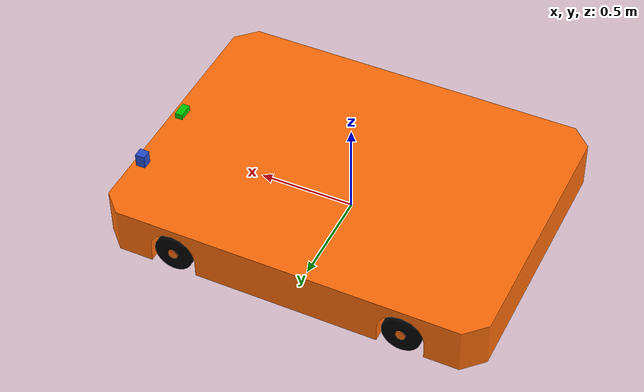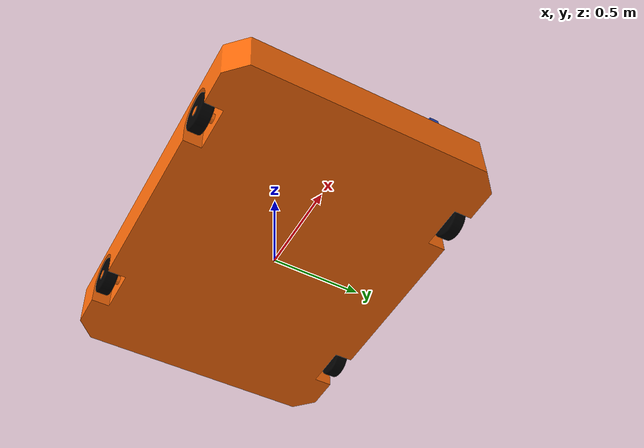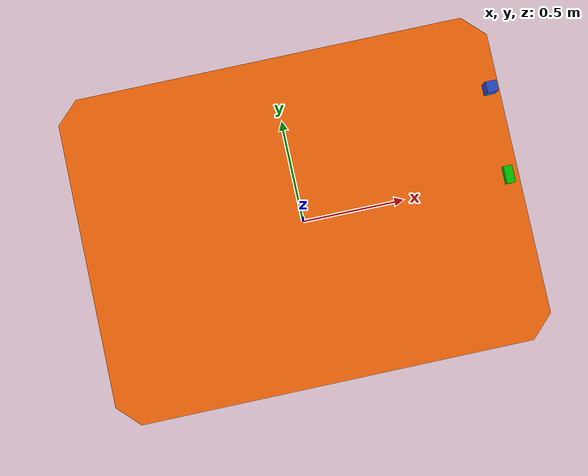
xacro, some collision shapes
<?xml version="1.0"?>
<robot name= "agv"  xmlns:xacro="http://www.ros.org/wiki/xacro">

	<!-- Robot constants and properties -->
	<xacro:include filename="$(find agv_description)/urdf/agv_properties.xacro" />
	<!-- Gazebo aspects of the robot -->
	<xacro:include filename="$(find agv_description)/urdf/agv.gazebo" />
	<!-- Inertia matrices -->
	<xacro:include filename="$(find agv_description)/urdf/macros.xacro" />
        <!-- import Rviz color-->
        <xacro:include filename="$(find agv_description)/urdf/materials.xacro" />

  <link
    name="base_footprint">
    <inertial>
      <origin
        xyz="0 0 0"
        rpy="0 0 0" />
      <mass
        value="2.01061929829948E-06" />
      <inertia
        ixx="8.04274527577102E-12"
        ixy="0"
        ixz="0"
        iyy="8.04274527577102E-12"
        iyz="0"
        izz="1.60849543863958E-11" />
    </inertial>
    <visual>
      <origin
        xyz="0 0 0"
        rpy="0 0 0" />
      <geometry>
        <mesh
          filename="package://agv_description/meshes/base_footprint.STL" />
      </geometry>
      <material name="grey" />
    </visual>
    <collision>
      <origin
        xyz="0 0 0"
        rpy="0 0 0" />
      <geometry>
        <mesh
          filename="package://agv_description/meshes/base_footprint.STL" />
      </geometry>
    </collision>
  </link>

  <!-- base link-->
  <link
    name="base_Link">
    <inertial>
      <!--origin
        xyz="0 0 0.125713618058247"
        rpy="0 0 0" /-->
      <origin
        xyz="0 0 0"
        rpy="0 0 0"/>
      <mass
        value="1000" />
      <box_inertia
        m="1000"
        x="2"
        y="1.5"
        z="0.23" />
    </inertial>
    <visual>
      <origin
        xyz="0 0 0"
        rpy="0 0 0" />
      <geometry>
        <mesh
          filename="package://agv_description/meshes/base_Link.STL" />
      </geometry>
      <material name="orange" />
    </visual>
    <collision>
      <origin
        xyz="0 0 0"
        rpy="0 0 0" />
      <geometry>
        <mesh
          filename="package://agv_description/meshes/base_Link.STL" />
      </geometry>
    </collision>
  </link>

  <joint
    name="base_footprint_joint"
    type="fixed">
    <origin
      xyz="0 0 4E-05"
      rpy="0 0 0" />
    <parent
      link="base_footprint" />
    <child
      link="base_Link" />
    <axis
      xyz="0 0 0" />
  </joint>

 <!-- front left link-->
  <link
    name="fl_Link">
    <inertial>
      <origin
        xyz="0 0 0.035"
        rpy="0 0 0" />
      <mass
        value="2.02796060125243" />
      <cylinder_inertia
        m="5"
        r="0.1"
        h="0.14" />
    </inertial>
    <visual>
      <origin
        xyz="0 0 0"
        rpy="0 0 0" />
      <geometry>
        <mesh
          filename="package://agv_description/meshes/fl_Link.STL" />
      </geometry>
      <material name="black" />
    </visual>
    <collision>
      <origin
        xyz="0 0 0"
        rpy="0 0 0" />
      <geometry>
        <mesh
          filename="package://agv_description/meshes/fl_Link.STL" />
      </geometry>
    </collision>
  </link>

  <joint
    name="fl_joint"
    type="continuous">
    <origin
      xyz="0.6 0.68 0.09"
      rpy="-1.5708 0 0" />
    <parent
      link="base_Link" />
    <child
      link="fl_Link" />
    <axis
      xyz="0 0 1" />
  </joint>

  <!-- back left link-->
  <link
    name="bl_Link">
    <inertial>
      <origin
        xyz="1.11022302462516E-16 0 0.0349886144674467"
        rpy="0 0 0" />
      <mass
        value="5" />
      <cylinder_inertia
        m="5"
        r="0.1"
        h="0.14" />
    </inertial>
    <visual>
      <origin
        xyz="0 0 0"
        rpy="0 0 0" />
      <geometry>
        <mesh
          filename="package://agv_description/meshes/bl_Link.STL" />
      </geometry>
      <material name="black" />

    </visual>
    <collision>
      <origin
        xyz="0 0 0"
        rpy="0 0 0" />
      <geometry>
        <mesh
          filename="package://agv_description/meshes/bl_Link.STL" />
      </geometry>
    </collision>
  </link>

  <joint
    name="bl_joint"
    type="continuous">
    <origin
      xyz="-0.6 0.68 0.0900000000000001"
      rpy="-1.5707963267949 0 0" />
    <parent
      link="base_Link" />
    <child
      link="bl_Link" />
    <axis
      xyz="0 0 1" />
  </joint>

<!-- front right link-->
  <link
    name="fr_Link">
    <inertial>
      <origin
        xyz="0 2.22044604925031E-16 0.0350501592853405"
        rpy="0 0 0" />
      <mass
        value="2.03116301113069" />
      <cylinder_inertia
        m="5"
        r="0.1"
        h="0.14" />
    </inertial>
    <visual>
      <origin
        xyz="0 0 0"
        rpy="0 0 0" />
      <geometry>
        <mesh
          filename="package://agv_description/meshes/fr_Link.STL" />
      </geometry>
      <material name="black" />
    </visual>
    <collision>
      <origin
        xyz="0 0 0"
        rpy="0 0 0" />
      <geometry>
        <mesh
          filename="package://agv_description/meshes/fr_Link.STL" />
      </geometry>
    </collision>
  </link>

  <joint
    name="fr_joint"
    type="continuous">
    <origin
      xyz="0.6 -0.68 0.0900000000000001"
      rpy="1.5707963267949 0 0" />
    <parent
      link="base_Link" />
    <child
      link="fr_Link" />
    <axis
      xyz="0 0 1" />
  </joint>

<!-- back right link-->
  <link
    name="br_Link">
    <inertial>
      <origin
        xyz="0 0 0.0349611985496496"
        rpy="0 0 0" />
      <mass
        value="2.03044090786952" />
      <cylinder_inertia
        m="5"
        r="0.1"
        h="0.14" />
    </inertial>
    <visual>
      <origin
        xyz="0 0 0"
        rpy="0 0 0" />
      <geometry>
        <mesh
          filename="package://agv_description/meshes/br_Link.STL" />
      </geometry>
      <material name="black" />
    </visual>
    <collision>
      <origin
        xyz="0 0 0"
        rpy="0 0 0" />
      <geometry>
        <mesh
          filename="package://agv_description/meshes/br_Link.STL" />
      </geometry>
    </collision>
  </link>

 <joint
    name="br_joint"
    type="continuous">
    <origin
      xyz="-0.6 -0.68 0.0899999999999994"
      rpy="1.5707963267949 0 0" />
    <parent
      link="base_Link" />
    <child
      link="br_Link" />
    <axis
      xyz="0 0 1" />
  </joint>

  <!-- sensors -->
  <xacro:include filename="$(find agv_description)/urdf/sensors.xacro" />
</robot>

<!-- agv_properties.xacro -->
<robot xmlns:xacro="http://www.ros.org/wiki/xacro">

	<!-- Constants -->
	<xacro:property name="PI" value="3.1415926535897931"/>

	<!-- Chassis properties -->
	<xacro:property name="chassisHeight" value="0.0623"/>
	<xacro:property name="chassisLength" value="0.198"/>
	<xacro:property name="chassisWidth" value="0.119"/>
	<xacro:property name="chassisMass" value="0.15"/>

	<!-- Caster wheel properties -->
	<xacro:property name="casterRadius" value="0.021"/>
	<xacro:property name="casterMass" value="0.09"/>
	<xacro:property name="casterOffsetX" value="0.091"/>

	<!-- Differential-drive wheels properties -->
	<xacro:property name="wheelWidth" value="0.026"/>
	<xacro:property name="wheelRadius" value="0.032"/>
	<xacro:property name="wheelMass" value="0.05"/>
	<xacro:property name="wheelOffsetY" value="0.037"/>

	<!-- Hokuyo laser properties -->
	<xacro:property name="hokuyoMass" value="0.01"/>
	<xacro:property name="hokuyoLength" value="0.05"/>
	<xacro:property name="hokuyoWidth" value="0.05"/>
	<xacro:property name="hokuyoHeight" value="0.07"/>
	<xacro:property name="hokuyoOffsetX" value="0.95"/>
	<xacro:property name="hokuyoOffsetY" value="0.4"/>
	<!--xacro:property name="hokuyoOffsetX" value="0.05"/-->
	<xacro:property name="hokuyoOffsetZ" value="0.285"/>
	<!--xacro:property name="hokuyoOffsetZ" value="0.1125"/-->

	<!-- Camera properties -->
	<xacro:property name="cameraLength" value="0.04"/>
	<xacro:property name="cameraWidth" value="0.08"/>
	<xacro:property name="cameraHeight" value="0.03"/>
	<xacro:property name="cameraMass" value="0.01"/>
	<xacro:property name="cameraOffsetX" value="0.95"/>
	<xacro:property name="cameraOffsetZ" value="0.265"/>

</robot>

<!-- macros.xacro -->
<!--
	definitions of some macros for easier description of the robot
-->

<robot xmlns:xacro="http://www.ros.org/wiki/xacro">

  <xacro:macro name="cylinder_inertia" params="m r h">

    <inertia
          ixx="${m*(3*r*r+h*h)/12}"
    			ixy = "0"
    			ixz = "0"
    			iyy="${m*(3*r*r+h*h)/12}"
    			iyz = "0"
    			izz="${m*r*r/2}"
    />
  </xacro:macro>

  <xacro:macro name="box_inertia" params="m x y z">

    <inertia
          ixx="${m*(y*y+z*z)/12}"
    			ixy = "0"
    			ixz = "0"
    			iyy="${m*(x*x+z*z)/12}"
    			iyz = "0"
    			izz="${m*(x*x+z*z)/12}"
    />
  </xacro:macro>

  <xacro:macro name="sphere_inertia" params="m r">

    <inertia
          ixx="${2*m*r*r/5}"
    			ixy = "0"
    			ixz = "0"
    			iyy="${2*m*r*r/5}"
    			iyz = "0"
    			izz="${2*m*r*r/5}"
    />
  </xacro:macro>

<!--
  http://gazebosim.org/tutorials/?tut=ros_control
-->
    <!-- Transmissions for ROS-Control -->
  <xacro:macro name="transmission_block" params="joint_name">

    <transmission name="${joint_name}_trans">
      <type>transmission_interface/SimpleTransmission</type>
      <joint name="${joint_name}">
        <hardwareInterface>hardware_interface/PositionJointInterface</hardwareInterface>
      </joint>
      <actuator name="${joint_name}_Motor">
        <hardwareInterface>hardware_interface/PositionJointInterface</hardwareInterface>
        <mechanicalReduction>1</mechanicalReduction>
      </actuator>
    </transmission>
  </xacro:macro>

  <!-- transmission-->
  <xacro:transmission_block joint_name="fl_joint" />
  <xacro:transmission_block joint_name="fr_joint" />
  <xacro:transmission_block joint_name="bl_joint" />
  <xacro:transmission_block joint_name="br_joint" />

</robot>

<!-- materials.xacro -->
<robot>
	<material name="black">
	  <color rgba="0.0 0.0 0.0 1.0"/>
	</material>

	<material name="blue">
	  <color rgba="0.0 0.0 0.8 1.0"/>
	</material>

	<material name="green">
	  <color rgba="0.0 0.8 0.0 1.0"/>
	</material>

	<material name="grey">
	  <color rgba="0.2 0.2 0.2 1.0"/>
	</material>

	<material name="light_grey">
          <color rgba="0.6 0.6 0.6 1"/>
        </material>

        <material name="dark_grey">
          <color rgba="0.3 0.3 0.3 1"/>
        </material>

	<material name="orange">
	  <color rgba="${255/255} ${108/255} ${10/255} 1.0"/>
	</material>

	<material name="brown">
	  <color rgba="${222/255} ${207/255} ${195/255} 1.0"/>
	</material>

	<material name="red">
	  <color rgba="0.8 0.0 0.0 1.0"/>
	</material>

	<material name="white">
	  <color rgba="1.0 1.0 1.0 1.0"/>
	</material>

  </robot>

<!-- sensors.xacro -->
<robot xmlns:xacro="http://www.ros.org/wiki/xacro">

  <link name="camera_link">
    <collision>
      <origin xyz="0 0 0"
              rpy="0 0 0"/>
      <geometry>
        <box size="${cameraLength}
                   ${cameraWidth}
                   ${cameraHeight}"/>
      </geometry>
    </collision>

    <visual>
      <origin xyz="0 0 0"
              rpy="0 0 0"/>
      <geometry>
        <box size="${cameraLength}
                   ${cameraWidth}
                   ${cameraHeight}"/>
      </geometry>
      <material name="green"/>
    </visual>

    <inertial>
      <mass value="${cameraMass}" />
      <origin xyz="0 0 0"
              rpy="0 0 0"/>
      <box_inertia m="${cameraMass}"
                   x="${cameraLength}"
                   y="${cameraWidth}"
                   z="${cameraHeight}" />
    </inertial>

  </link>

  <joint name="camera_joint" type="fixed">
    <axis xyz="0 1 0" />
    <origin xyz="${cameraOffsetX} 0 ${cameraOffsetZ}"
            rpy="0 0 0"/>
    <parent link="base_Link"/>
    <child link="camera_link"/>
  </joint>

  <joint name="hokuyo_joint" type="fixed">
    <axis xyz="0 1 0" />
    <origin xyz="${hokuyoOffsetX} ${hokuyoOffsetY} ${hokuyoOffsetZ}"
            rpy="0 0 0"/>
    <parent link="base_Link"/>
    <child link="hokuyo_link"/>
  </joint>

  <!-- Hokuyo Laser -->
  <link name="hokuyo_link">
    <collision>
      <origin xyz="0 0 0"
              rpy="0 0 0"/>
      <geometry>
        <box size="${hokuyoLength}
                   ${hokuyoWidth}
                   ${hokuyoHeight}"/>
      </geometry>
    </collision>

    <visual>
      <origin xyz="0 0 0"
              rpy="0 0 0"/>
      <geometry>
        <mesh filename="package://agv_description/meshes/hokuyo.dae"/>
      </geometry>
    </visual>

    <inertial>
      <mass value="${hokuyoMass}" />
      <origin xyz="0 0 0"
              rpy="0 0 0"/>
      <box_inertia
        m="${hokuyoMass}"
        x="${hokuyoLength}"
        y="${hokuyoWidth}"
        z="${hokuyoHeight}"/>
    </inertial>

  </link>

  <!-- IMU sensor -->
  <joint name="imu_joint" type="fixed">
    <parent link="base_Link"/>
    <child link="imu_link"/>
    <origin xyz="0 0 0" rpy="0 0 0"/>
  </joint>

  <link name="imu_link">
   <inertial>
      <origin
        xyz="0 0 0"
        rpy="0 0 0" />
      <mass
        value="0.010" />
      <inertia
        ixx="1"
        ixy="0"
        ixz="0"
        iyy="1"
        iyz="0"
        izz="1" />
    </inertial>
    <visual>
      <origin
        xyz="0 0 0"
        rpy="0 0 0" />
      <geometry>
	<box size="0.01 0.01 0.01"/>
      </geometry>
      <material name="red" />
    </visual>
    <collision>
      <origin
        xyz="0 0 0"
        rpy="0 1.5707 1.5707" />
      <geometry>
	<box size="0.05 0.05 0.05"/>
      </geometry>
    </collision>
  </link>

</robot>
